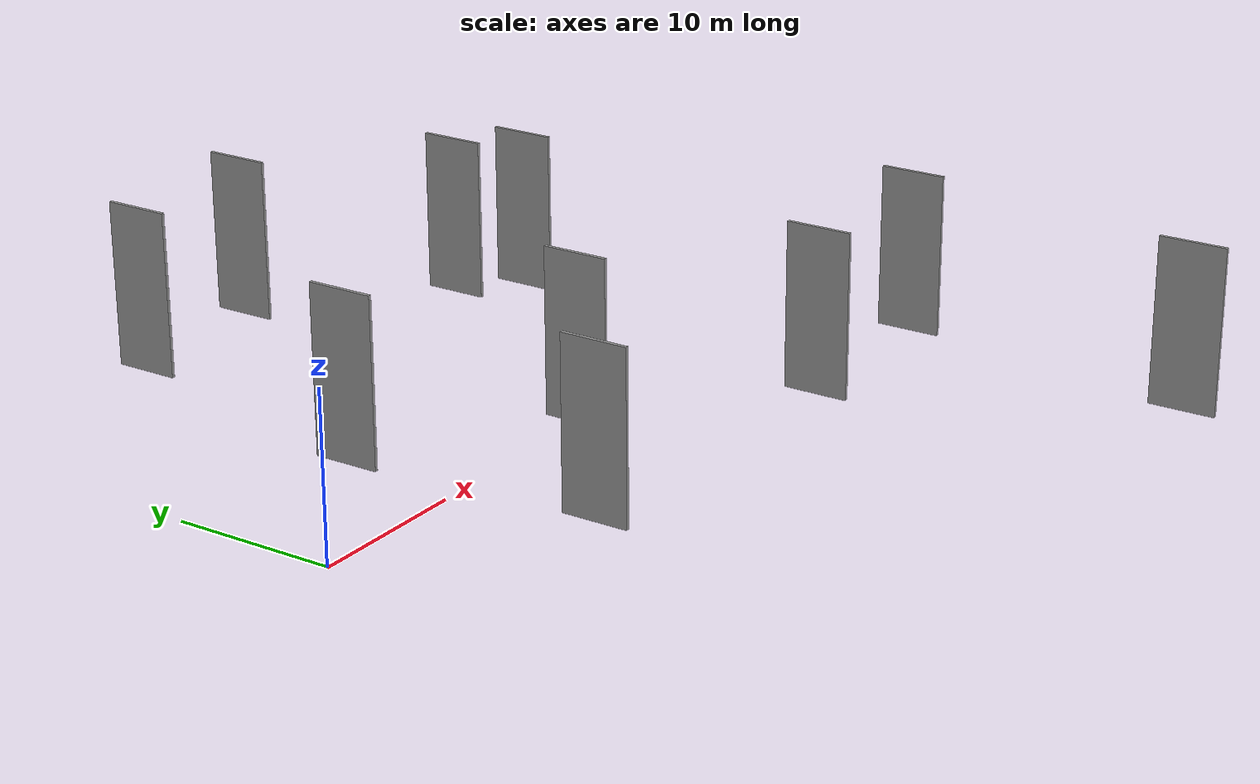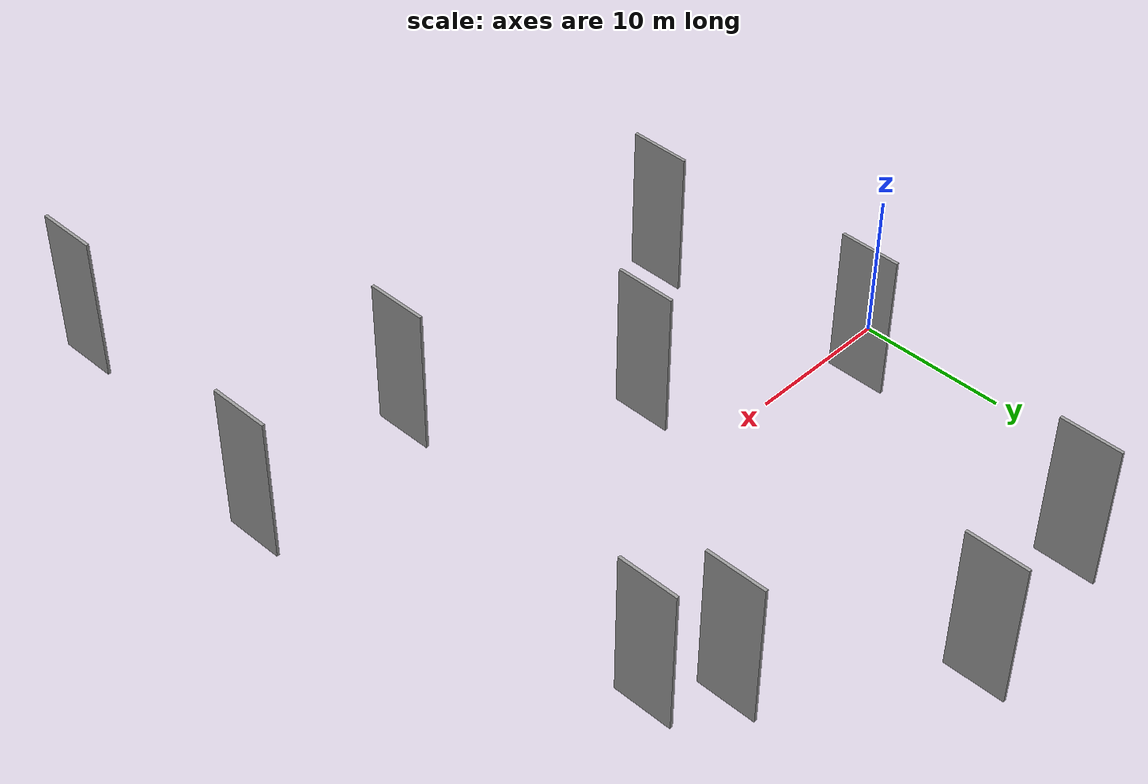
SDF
<sdf version="1.6">
 <world name="default">
  <scene>
   <sky><clouds><speed>12</speed></clouds></sky>
   <ambient>0.4 0.4 0.4 1</ambient>
   <background>0.7 0.7 0.7 1</background>
   <shadows>1</shadows>
  </scene>
  <gravity>0 0 -9.8066</gravity>
  <magnetic_field>6e-06 2.3e-05 -4.2e-05</magnetic_field>
  <physics default="0" name="default_physics" type="ode">
   <ode>
    <solver>
     <type>quick</type>
     <iters>10</iters>
     <sor>1.0</sor>
     <use_dynamic_moi_rescaling>0</use_dynamic_moi_rescaling>
    </solver>
    <constraints>
     <cfm>0</cfm>
     <erp>0.2</erp>
     <contact_max_correcting_vel>100</contact_max_correcting_vel>
     <contact_surface_layer>0.001</contact_surface_layer>
    </constraints>
   </ode>
   <max_step_size>0.004</max_step_size>
   <real_time_factor>1</real_time_factor>
   <real_time_update_rate>250</real_time_update_rate>
  </physics>
  <light name="sun" type="directional">
   <pose>0 0 10 0 0 0</pose>
   <diffuse>0.8 0.8 0.8 1</diffuse>
   <specular>0.2 0.2 0.2 1</specular>
   <attenuation>
    <range>1000</range>
    <constant>0.9</constant>
    <linear>0.01</linear>
    <quadratic>0.001</quadratic>
   </attenuation>
   <direction>-0.5 0.1 -0.9</direction>
  </light>
  <model name="grey_wall_1">
   <static>1</static>
   <pose>10.5639 22.0487 2.5 0.000000 0.000000 1.570796</pose>
   <link name="link">
    <pose>0 0 5.00 0 0 0</pose>
    <collision name="collision"><geometry><box><size>4.00 0.2 10.00</size></box></geometry></collision>
    <visual name="visual">
     <cast_shadows>0</cast_shadows>
     <geometry><box><size>4.00 0.2 10.00</size></box></geometry>
     <material>
      <script>
       <uri>model://grey_wall/materials/scripts</uri>
       <uri>model://grey_wall/materials/textures</uri>
       <name>vrc/grey_wall</name>
      </script>
     </material>
    </visual>
   </link>
  </model>
  <model name="grey_wall_2">
   <static>1</static>
   <pose>6.5201 3.8981 2.5 0.000000 0.000000 1.570796</pose>
   <link name="link">
    <pose>0 0 5.00 0 0 0</pose>
    <collision name="collision"><geometry><box><size>4.00 0.2 10.00</size></box></geometry></collision>
    <visual name="visual">
     <cast_shadows>0</cast_shadows>
     <geometry><box><size>4.00 0.2 10.00</size></box></geometry>
     <material>
      <script>
       <uri>model://grey_wall/materials/scripts</uri>
       <uri>model://grey_wall/materials/textures</uri>
       <name>vrc/grey_wall</name>
      </script>
     </material>
    </visual>
   </link>
  </model>
  <model name="grey_wall_3">
   <static>1</static>
   <pose>34.4784 12.2598 2.5 0.000000 0.000000 1.570796</pose>
   <link name="link">
    <pose>0 0 5.00 0 0 0</pose>
    <collision name="collision"><geometry><box><size>4.00 0.2 10.00</size></box></geometry></collision>
    <visual name="visual">
     <cast_shadows>0</cast_shadows>
     <geometry><box><size>4.00 0.2 10.00</size></box></geometry>
     <material>
      <script>
       <uri>model://grey_wall/materials/scripts</uri>
       <uri>model://grey_wall/materials/textures</uri>
       <name>vrc/grey_wall</name>
      </script>
     </material>
    </visual>
   </link>
  </model>
  <model name="grey_wall_4">
   <static>1</static>
   <pose>31.0805 15.0933 2.5 0.000000 0.000000 1.570796</pose>
   <link name="link">
    <pose>0 0 5.00 0 0 0</pose>
    <collision name="collision"><geometry><box><size>4.00 0.2 10.00</size></box></geometry></collision>
    <visual name="visual">
     <cast_shadows>0</cast_shadows>
     <geometry><box><size>4.00 0.2 10.00</size></box></geometry>
     <material>
      <script>
       <uri>model://grey_wall/materials/scripts</uri>
       <uri>model://grey_wall/materials/textures</uri>
       <name>vrc/grey_wall</name>
      </script>
     </material>
    </visual>
   </link>
  </model>
  <model name="grey_wall_5">
   <static>1</static>
   <pose>7.7640 -11.3721 2.5 0.000000 0.000000 1.570796</pose>
   <link name="link">
    <pose>0 0 5.00 0 0 0</pose>
    <collision name="collision"><geometry><box><size>4.00 0.2 10.00</size></box></geometry></collision>
    <visual name="visual">
     <cast_shadows>0</cast_shadows>
     <geometry><box><size>4.00 0.2 10.00</size></box></geometry>
     <material>
      <script>
       <uri>model://grey_wall/materials/scripts</uri>
       <uri>model://grey_wall/materials/textures</uri>
       <name>vrc/grey_wall</name>
      </script>
     </material>
    </visual>
   </link>
  </model>
  <model name="grey_wall_6">
   <static>1</static>
   <pose>28.8406 -12.1671 2.5 0.000000 0.000000 1.570796</pose>
   <link name="link">
    <pose>0 0 5.00 0 0 0</pose>
    <collision name="collision"><geometry><box><size>4.00 0.2 10.00</size></box></geometry></collision>
    <visual name="visual">
     <cast_shadows>0</cast_shadows>
     <geometry><box><size>4.00 0.2 10.00</size></box></geometry>
     <material>
      <script>
       <uri>model://grey_wall/materials/scripts</uri>
       <uri>model://grey_wall/materials/textures</uri>
       <name>vrc/grey_wall</name>
      </script>
     </material>
    </visual>
   </link>
  </model>
  <model name="grey_wall_7">
   <static>1</static>
   <pose>37.9185 -30.6218 2.5 0.000000 0.000000 1.570796</pose>
   <link name="link">
    <pose>0 0 5.00 0 0 0</pose>
    <collision name="collision"><geometry><box><size>4.00 0.2 10.00</size></box></geometry></collision>
    <visual name="visual">
     <cast_shadows>0</cast_shadows>
     <geometry><box><size>4.00 0.2 10.00</size></box></geometry>
     <material>
      <script>
       <uri>model://grey_wall/materials/scripts</uri>
       <uri>model://grey_wall/materials/textures</uri>
       <name>vrc/grey_wall</name>
      </script>
     </material>
    </visual>
   </link>
  </model>
  <model name="grey_wall_8">
   <static>1</static>
   <pose>20.8853 23.5823 2.5 0.000000 0.000000 1.570796</pose>
   <link name="link">
    <pose>0 0 5.00 0 0 0</pose>
    <collision name="collision"><geometry><box><size>4.00 0.2 10.00</size></box></geometry></collision>
    <visual name="visual">
     <cast_shadows>0</cast_shadows>
     <geometry><box><size>4.00 0.2 10.00</size></box></geometry>
     <material>
      <script>
       <uri>model://grey_wall/materials/scripts</uri>
       <uri>model://grey_wall/materials/textures</uri>
       <name>vrc/grey_wall</name>
      </script>
     </material>
    </visual>
   </link>
  </model>
  <model name="grey_wall_9">
   <static>1</static>
   <pose>40.6991 -11.7430 2.5 0.000000 0.000000 1.570796</pose>
   <link name="link">
    <pose>0 0 5.00 0 0 0</pose>
    <collision name="collision"><geometry><box><size>4.00 0.2 10.00</size></box></geometry></collision>
    <visual name="visual">
     <cast_shadows>0</cast_shadows>
     <geometry><box><size>4.00 0.2 10.00</size></box></geometry>
     <material>
      <script>
       <uri>model://grey_wall/materials/scripts</uri>
       <uri>model://grey_wall/materials/textures</uri>
       <name>vrc/grey_wall</name>
      </script>
     </material>
    </visual>
   </link>
  </model>
  <model name="grey_wall_10">
   <static>1</static>
   <pose>17.9651 -3.1528 2.5 0.000000 0.000000 1.570796</pose>
   <link name="link">
    <pose>0 0 5.00 0 0 0</pose>
    <collision name="collision"><geometry><box><size>4.00 0.2 10.00</size></box></geometry></collision>
    <visual name="visual">
     <cast_shadows>0</cast_shadows>
     <geometry><box><size>4.00 0.2 10.00</size></box></geometry>
     <material>
      <script>
       <uri>model://grey_wall/materials/scripts</uri>
       <uri>model://grey_wall/materials/textures</uri>
       <name>vrc/grey_wall</name>
      </script>
     </material>
    </visual>
   </link>
  </model>
 </world>
</sdf>
